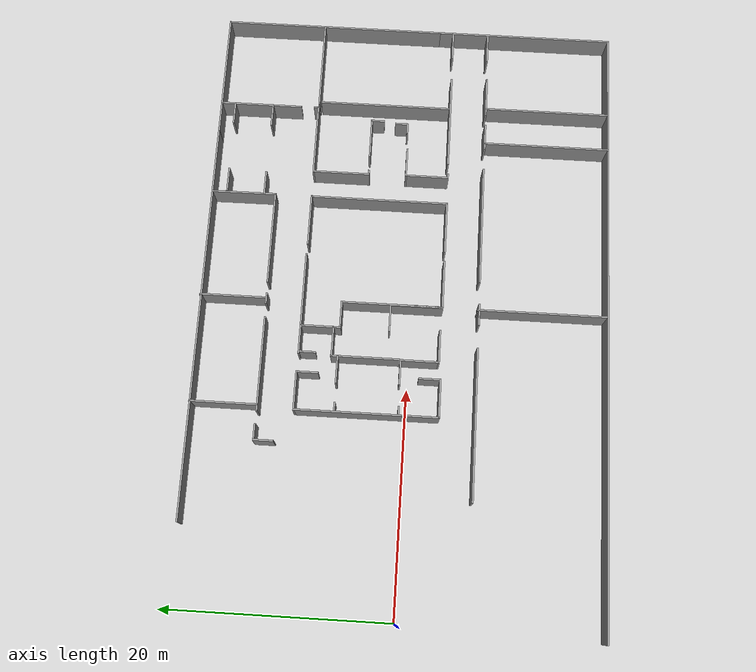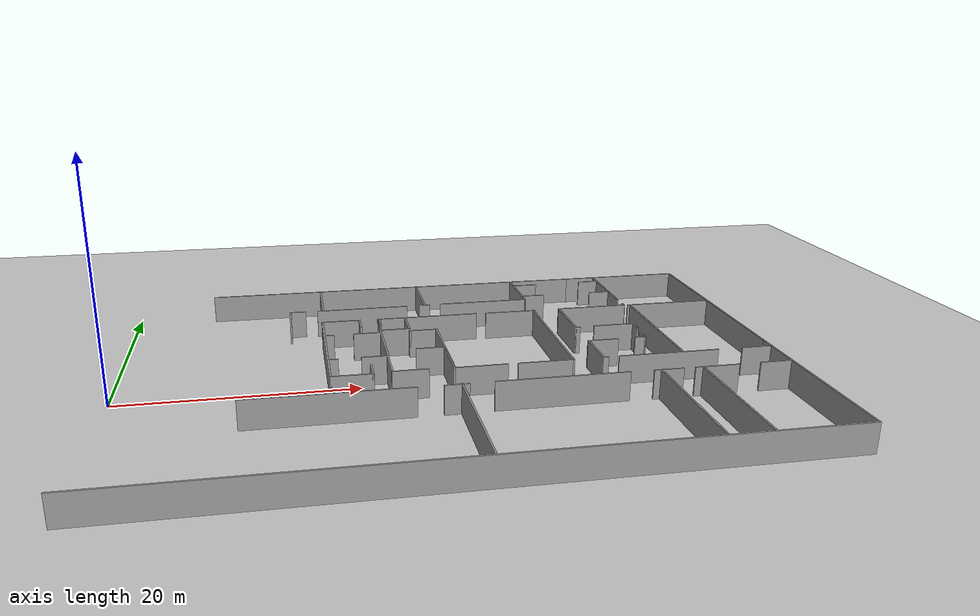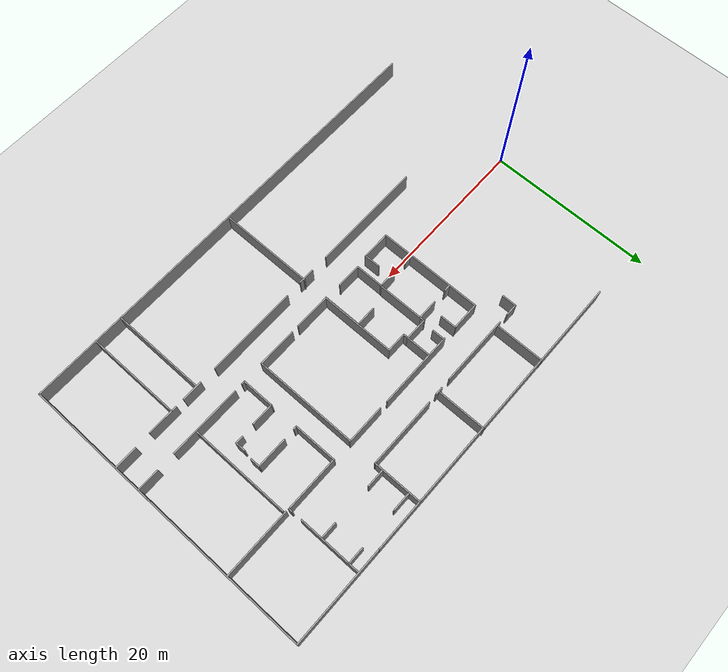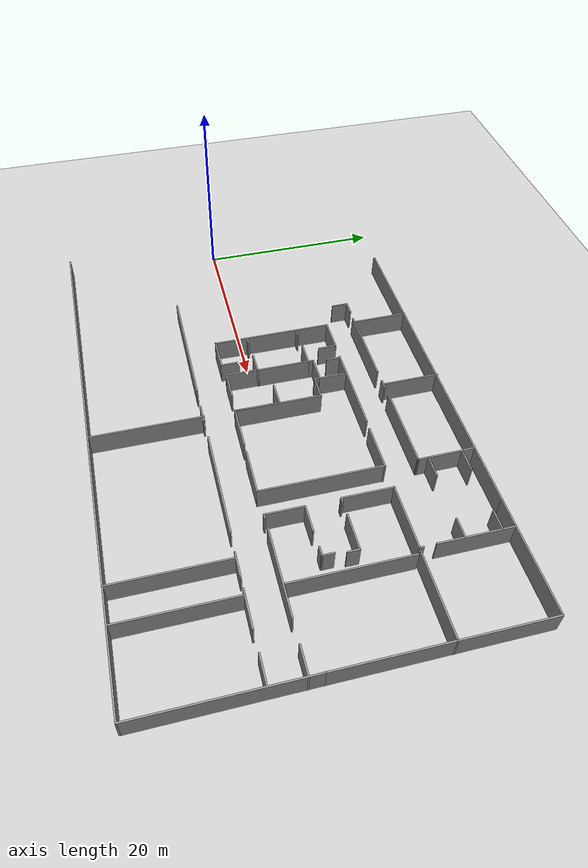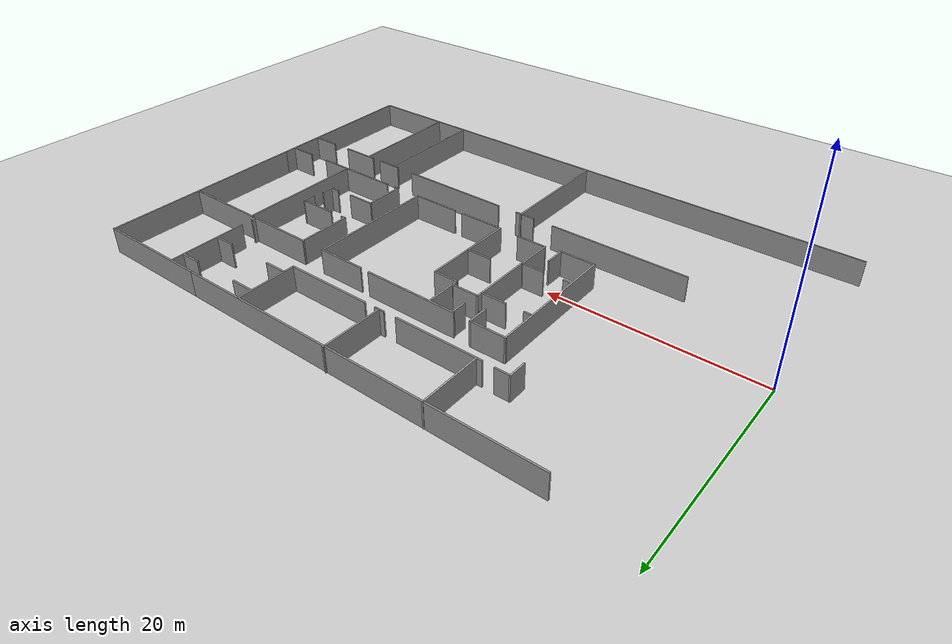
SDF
<sdf version="1.6">
 <world name="default">
  <model name="ground_plane">
   <static>1</static>
   <link name="link">
    <collision name="collision">
     <geometry><plane><normal>0 0 1</normal><size>100 100</size></plane></geometry>
     <surface>
      <contact><collide_bitmask>65535</collide_bitmask></contact>
      <friction><ode><mu>100</mu><mu2>50</mu2></ode></friction>
     </surface>
    </collision>
    <visual name="visual">
     <cast_shadows>0</cast_shadows>
     <geometry><plane><normal>0 0 1</normal><size>100 100</size></plane></geometry>
     <material>
      <script><uri>file://media/materials/scripts/gazebo.material</uri><name>Gazebo/Grey</name></script>
     </material>
    </visual>
   </link>
  </model>
  <model name="L8_1st">
   <pose>-0.728485 -0.360932 0 0 -0 0</pose>
   <link name="Wall_285">
    <collision name="Wall_285_Collision">
     <geometry><box><size>1.81118 0.15 2.5</size></box></geometry>
     <pose>0 0 1.25 0 -0 0</pose>
    </collision>
    <visual name="Wall_285_Visual">
     <pose>0 0 1.25 0 -0 0</pose>
     <geometry><box><size>1.81118 0.15 2.5</size></box></geometry>
     <material>
      <script><uri>file://media/materials/scripts/gazebo.material</uri><name>Gazebo/Grey</name></script>
      <ambient>1 1 1 1</ambient>
     </material>
     <meta><layer>0</layer></meta>
    </visual>
    <pose>15.204 12.4793 0 0 -0 1.5708</pose>
   </link>
   <link name="Wall_286">
    <collision name="Wall_286_Collision">
     <geometry><box><size>1.5 0.15 2.5</size></box></geometry>
     <pose>0 0 1.25 0 -0 0</pose>
    </collision>
    <visual name="Wall_286_Visual">
     <pose>0 0 1.25 0 -0 0</pose>
     <geometry><box><size>1.5 0.15 2.5</size></box></geometry>
     <material>
      <script><uri>file://media/materials/scripts/gazebo.material</uri><name>Gazebo/Grey</name></script>
      <ambient>1 1 1 1</ambient>
     </material>
     <meta><layer>0</layer></meta>
    </visual>
    <pose>15.879 13.2946 0 0 -0 0</pose>
   </link>
   <link name="Wall_288">
    <collision name="Wall_288_Collision">
     <geometry><box><size>8.5 0.15 2.5</size></box></geometry>
     <pose>0 0 1.25 0 -0 0</pose>
    </collision>
    <visual name="Wall_288_Visual">
     <pose>0 0 1.25 0 -0 0</pose>
     <geometry><box><size>8.5 0.15 2.5</size></box></geometry>
     <material>
      <script><uri>file://media/materials/scripts/gazebo.material</uri><name>Gazebo/Grey</name></script>
      <ambient>1 1 1 1</ambient>
     </material>
     <meta><layer>0</layer></meta>
    </visual>
    <pose>21.9638 13.2547 0 0 -0 0</pose>
   </link>
   <link name="Wall_290">
    <collision name="Wall_290_Collision">
     <geometry><box><size>1 0.15 2.5</size></box></geometry>
     <pose>0 0 1.25 0 -0 0</pose>
    </collision>
    <visual name="Wall_290_Visual">
     <pose>0 0 1.25 0 -0 0</pose>
     <geometry><box><size>1 0.15 2.5</size></box></geometry>
     <material>
      <script><uri>file://media/materials/scripts/gazebo.material</uri><name>Gazebo/Grey</name></script>
      <ambient>1 1 1 1</ambient>
     </material>
     <meta><layer>0</layer></meta>
    </visual>
    <pose>27.8956 13.2853 0 0 -0 0</pose>
   </link>
   <link name="Wall_292">
    <collision name="Wall_292_Collision">
     <geometry><box><size>8.5 0.15 2.5</size></box></geometry>
     <pose>0 0 1.25 0 -0 0</pose>
    </collision>
    <visual name="Wall_292_Visual">
     <pose>0 0 1.25 0 -0 0</pose>
     <geometry><box><size>8.5 0.15 2.5</size></box></geometry>
     <material>
      <script><uri>file://media/materials/scripts/gazebo.material</uri><name>Gazebo/Grey</name></script>
      <ambient>1 1 1 1</ambient>
     </material>
     <meta><layer>0</layer></meta>
    </visual>
    <pose>33.6646 13.3159 0 0 -0 0</pose>
   </link>
   <link name="Wall_294">
    <collision name="Wall_294_Collision">
     <geometry><box><size>5.91633 0.15 2.5</size></box></geometry>
     <pose>0 0 1.25 0 -0 0</pose>
    </collision>
    <visual name="Wall_294_Visual">
     <pose>0 0 1.25 0 -0 0</pose>
     <geometry><box><size>5.91633 0.15 2.5</size></box></geometry>
     <material>
      <script><uri>file://media/materials/scripts/gazebo.material</uri><name>Gazebo/Grey</name></script>
      <ambient>1 1 1 1</ambient>
     </material>
     <meta><layer>0</layer></meta>
    </visual>
    <pose>37.8249 16.199 0 0 -0 -1.56569</pose>
   </link>
   <link name="Wall_296">
    <collision name="Wall_296_Collision">
     <geometry><box><size>2.25 0.15 2.5</size></box></geometry>
     <pose>0 0 1.25 0 -0 0</pose>
    </collision>
    <visual name="Wall_296_Visual">
     <pose>0 0 1.25 0 -0 0</pose>
     <geometry><box><size>2.25 0.15 2.5</size></box></geometry>
     <material>
      <script><uri>file://media/materials/scripts/gazebo.material</uri><name>Gazebo/Grey</name></script>
      <ambient>1 1 1 1</ambient>
     </material>
     <meta><layer>0</layer></meta>
    </visual>
    <pose>38.906 14.3406 0 0 -0 0</pose>
   </link>
   <link name="Wall_298">
    <collision name="Wall_298_Collision">
     <geometry><box><size>2.25 0.15 2.5</size></box></geometry>
     <pose>0 0 1.25 0 -0 0</pose>
    </collision>
    <visual name="Wall_298_Visual">
     <pose>0 0 1.25 0 -0 0</pose>
     <geometry><box><size>2.25 0.15 2.5</size></box></geometry>
     <material>
      <script><uri>file://media/materials/scripts/gazebo.material</uri><name>Gazebo/Grey</name></script>
      <ambient>1 1 1 1</ambient>
     </material>
     <meta><layer>0</layer></meta>
    </visual>
    <pose>39.0284 17.7668 0 0 -0 0</pose>
   </link>
   <link name="Wall_300">
    <collision name="Wall_300_Collision">
     <geometry><box><size>2 0.15 2.5</size></box></geometry>
     <pose>0 0 1.25 0 -0 0</pose>
    </collision>
    <visual name="Wall_300_Visual">
     <pose>0 0 1.25 0 -0 0</pose>
     <geometry><box><size>2 0.15 2.5</size></box></geometry>
     <material>
      <script><uri>file://media/materials/scripts/gazebo.material</uri><name>Gazebo/Grey</name></script>
      <ambient>1 1 1 1</ambient>
     </material>
     <meta><layer>0</layer></meta>
    </visual>
    <pose>45.7556 17.8279 0 0 -0 0</pose>
   </link>
   <link name="Wall_302">
    <collision name="Wall_302_Collision">
     <geometry><box><size>2 0.15 2.5</size></box></geometry>
     <pose>0 0 1.25 0 -0 0</pose>
    </collision>
    <visual name="Wall_302_Visual">
     <pose>0 0 1.25 0 -0 0</pose>
     <geometry><box><size>2 0.15 2.5</size></box></geometry>
     <material>
      <script><uri>file://media/materials/scripts/gazebo.material</uri><name>Gazebo/Grey</name></script>
      <ambient>1 1 1 1</ambient>
     </material>
     <meta><layer>0</layer></meta>
    </visual>
    <pose>45.725 14.2795 0 0 -0 0</pose>
   </link>
   <link name="Wall_304">
    <collision name="Wall_304_Collision">
     <geometry><box><size>7.5 0.15 2.5</size></box></geometry>
     <pose>0 0 1.25 0 -0 0</pose>
    </collision>
    <visual name="Wall_304_Visual">
     <pose>0 0 1.25 0 -0 0</pose>
     <geometry><box><size>7.5 0.15 2.5</size></box></geometry>
     <material>
      <script><uri>file://media/materials/scripts/gazebo.material</uri><name>Gazebo/Grey</name></script>
      <ambient>1 1 1 1</ambient>
     </material>
     <meta><layer>0</layer></meta>
    </visual>
    <pose>46.7398 15.3386 0 0 -0 -1.5708</pose>
   </link>
   <link name="Wall_306">
    <collision name="Wall_306_Collision">
     <geometry><box><size>0.5 0.15 2.5</size></box></geometry>
     <pose>0 0 1.25 0 -0 0</pose>
    </collision>
    <visual name="Wall_306_Visual">
     <pose>0 0 1.25 0 -0 0</pose>
     <geometry><box><size>0.5 0.15 2.5</size></box></geometry>
     <material>
      <script><uri>file://media/materials/scripts/gazebo.material</uri><name>Gazebo/Grey</name></script>
      <ambient>1 1 1 1</ambient>
     </material>
     <meta><layer>0</layer></meta>
    </visual>
    <pose>46.775 10.1846 0 0 -0 -1.5708</pose>
   </link>
   <link name="Wall_308">
    <collision name="Wall_308_Collision">
     <geometry><box><size>6.62289 0.15 2.5</size></box></geometry>
     <pose>0 0 1.25 0 -0 0</pose>
    </collision>
    <visual name="Wall_308_Visual">
     <pose>0 0 1.25 0 -0 0</pose>
     <geometry><box><size>6.62289 0.15 2.5</size></box></geometry>
     <material>
      <script><uri>file://media/materials/scripts/gazebo.material</uri><name>Gazebo/Grey</name></script>
      <ambient>1 1 1 1</ambient>
     </material>
     <meta><layer>0</layer></meta>
    </visual>
    <pose>43.5385 10.0087 0 0 -0 0.000276</pose>
   </link>
   <link name="Wall_31">
    <collision name="Wall_31_Collision">
     <geometry><box><size>36 0.15 2.5</size></box></geometry>
     <pose>0 0 1.25 0 -0 0</pose>
    </collision>
    <visual name="Wall_31_Visual">
     <pose>0 0 1.25 0 -0 0</pose>
     <geometry><box><size>36 0.15 2.5</size></box></geometry>
     <material>
      <script><uri>file://media/materials/scripts/gazebo.material</uri><name>Gazebo/Grey</name></script>
      <ambient>1 1 1 1</ambient>
     </material>
     <meta><layer>0</layer></meta>
    </visual>
    <pose>25.9093 19.1026 0 0 -0 0</pose>
   </link>
   <link name="Wall_310">
    <collision name="Wall_310_Collision">
     <geometry><box><size>5.25 0.15 2.5</size></box></geometry>
     <pose>0 0 1.25 0 -0 0</pose>
    </collision>
    <visual name="Wall_310_Visual">
     <pose>0 0 1.25 0 -0 0</pose>
     <geometry><box><size>5.25 0.15 2.5</size></box></geometry>
     <material>
      <script><uri>file://media/materials/scripts/gazebo.material</uri><name>Gazebo/Grey</name></script>
      <ambient>1 1 1 1</ambient>
     </material>
     <meta><layer>0</layer></meta>
    </visual>
    <pose>40.3021 7.4578 0 0 -0 -1.5708</pose>
   </link>
   <link name="Wall_311">
    <collision name="Wall_311_Collision">
     <geometry><box><size>0.5 0.15 2.5</size></box></geometry>
     <pose>0 0 1.25 0 -0 0</pose>
    </collision>
    <visual name="Wall_311_Visual">
     <pose>0 0 1.25 0 -0 0</pose>
     <geometry><box><size>0.5 0.15 2.5</size></box></geometry>
     <material>
      <script><uri>file://media/materials/scripts/gazebo.material</uri><name>Gazebo/Grey</name></script>
      <ambient>1 1 1 1</ambient>
     </material>
     <meta><layer>0</layer></meta>
    </visual>
    <pose>40.4771 4.9078 0 0 -0 0</pose>
   </link>
   <link name="Wall_313">
    <collision name="Wall_313_Collision">
     <geometry><box><size>3.75 0.15 2.5</size></box></geometry>
     <pose>0 0 1.25 0 -0 0</pose>
    </collision>
    <visual name="Wall_313_Visual">
     <pose>0 0 1.25 0 -0 0</pose>
     <geometry><box><size>3.75 0.15 2.5</size></box></geometry>
     <material>
      <script><uri>file://media/materials/scripts/gazebo.material</uri><name>Gazebo/Grey</name></script>
      <ambient>1 1 1 1</ambient>
     </material>
     <meta><layer>0</layer></meta>
    </visual>
    <pose>43.9138 4.92447 0 0 -0 0</pose>
   </link>
   <link name="Wall_314">
    <collision name="Wall_314_Collision">
     <geometry><box><size>1.25 0.15 2.5</size></box></geometry>
     <pose>0 0 1.25 0 -0 0</pose>
    </collision>
    <visual name="Wall_314_Visual">
     <pose>0 0 1.25 0 -0 0</pose>
     <geometry><box><size>1.25 0.15 2.5</size></box></geometry>
     <material>
      <script><uri>file://media/materials/scripts/gazebo.material</uri><name>Gazebo/Grey</name></script>
      <ambient>1 1 1 1</ambient>
     </material>
     <meta><layer>0</layer></meta>
    </visual>
    <pose>45.7138 4.37447 0 0 -0 -1.5708</pose>
   </link>
   <link name="Wall_316">
    <collision name="Wall_316_Collision">
     <geometry><box><size>1 0.15 2.5</size></box></geometry>
     <pose>0 0 1.25 0 -0 0</pose>
    </collision>
    <visual name="Wall_316_Visual">
     <pose>0 0 1.25 0 -0 0</pose>
     <geometry><box><size>1 0.15 2.5</size></box></geometry>
     <material>
      <script><uri>file://media/materials/scripts/gazebo.material</uri><name>Gazebo/Grey</name></script>
      <ambient>1 1 1 1</ambient>
     </material>
     <meta><layer>0</layer></meta>
    </visual>
    <pose>45.1068 1.5649 0 0 -0 0</pose>
   </link>
   <link name="Wall_317">
    <collision name="Wall_317_Collision">
     <geometry><box><size>1.25 0.15 2.5</size></box></geometry>
     <pose>0 0 1.25 0 -0 0</pose>
    </collision>
    <visual name="Wall_317_Visual">
     <pose>0 0 1.25 0 -0 0</pose>
     <geometry><box><size>1.25 0.15 2.5</size></box></geometry>
     <material>
      <script><uri>file://media/materials/scripts/gazebo.material</uri><name>Gazebo/Grey</name></script>
      <ambient>1 1 1 1</ambient>
     </material>
     <meta><layer>0</layer></meta>
    </visual>
    <pose>45.5318 2.1149 0 0 -0 1.5708</pose>
   </link>
   <link name="Wall_319">
    <collision name="Wall_319_Collision">
     <geometry><box><size>2.75 0.15 2.5</size></box></geometry>
     <pose>0 0 1.25 0 -0 0</pose>
    </collision>
    <visual name="Wall_319_Visual">
     <pose>0 0 1.25 0 -0 0</pose>
     <geometry><box><size>2.75 0.15 2.5</size></box></geometry>
     <material>
      <script><uri>file://media/materials/scripts/gazebo.material</uri><name>Gazebo/Grey</name></script>
      <ambient>1 1 1 1</ambient>
     </material>
     <meta><layer>0</layer></meta>
    </visual>
    <pose>41.6757 1.47695 0 0 -0 3.14159</pose>
   </link>
   <link name="Wall_320">
    <collision name="Wall_320_Collision">
     <geometry><box><size>4 0.15 2.5</size></box></geometry>
     <pose>0 0 1.25 0 -0 0</pose>
    </collision>
    <visual name="Wall_320_Visual">
     <pose>0 0 1.25 0 -0 0</pose>
     <geometry><box><size>4 0.15 2.5</size></box></geometry>
     <material>
      <script><uri>file://media/materials/scripts/gazebo.material</uri><name>Gazebo/Grey</name></script>
      <ambient>1 1 1 1</ambient>
     </material>
     <meta><layer>0</layer></meta>
    </visual>
    <pose>40.3757 -0.448048 0 0 -0 -1.5708</pose>
   </link>
   <link name="Wall_321">
    <collision name="Wall_321_Collision">
     <geometry><box><size>0.5 0.15 2.5</size></box></geometry>
     <pose>0 0 1.25 0 -0 0</pose>
    </collision>
    <visual name="Wall_321_Visual">
     <pose>0 0 1.25 0 -0 0</pose>
     <geometry><box><size>0.5 0.15 2.5</size></box></geometry>
     <material>
      <script><uri>file://media/materials/scripts/gazebo.material</uri><name>Gazebo/Grey</name></script>
      <ambient>1 1 1 1</ambient>
     </material>
     <meta><layer>0</layer></meta>
    </visual>
    <pose>40.5507 -2.37305 0 0 -0 0</pose>
   </link>
   <link name="Wall_323">
    <collision name="Wall_323_Collision">
     <geometry><box><size>8.75 0.15 2.5</size></box></geometry>
     <pose>0 0 1.25 0 -0 0</pose>
    </collision>
    <visual name="Wall_323_Visual">
     <pose>0 0 1.25 0 -0 0</pose>
     <geometry><box><size>8.75 0.15 2.5</size></box></geometry>
     <material>
      <script><uri>file://media/materials/scripts/gazebo.material</uri><name>Gazebo/Grey</name></script>
      <ambient>1 1 1 1</ambient>
     </material>
     <meta><layer>0</layer></meta>
    </visual>
    <pose>46.0796 -2.33994 0 0 -0 0</pose>
   </link>
   <link name="Wall_325">
    <collision name="Wall_325_Collision">
     <geometry><box><size>2.75 0.15 2.5</size></box></geometry>
     <pose>0 0 1.25 0 -0 0</pose>
    </collision>
    <visual name="Wall_325_Visual">
     <pose>0 0 1.25 0 -0 0</pose>
     <geometry><box><size>2.75 0.15 2.5</size></box></geometry>
     <material>
      <script><uri>file://media/materials/scripts/gazebo.material</uri><name>Gazebo/Grey</name></script>
      <ambient>1 1 1 1</ambient>
     </material>
     <meta><layer>0</layer></meta>
    </visual>
    <pose>53.985 -2.32235 0 0 -0 0</pose>
   </link>
   <link name="Wall_327">
    <collision name="Wall_327_Collision">
     <geometry><box><size>3.5 0.15 2.5</size></box></geometry>
     <pose>0 0 1.25 0 -0 0</pose>
    </collision>
    <visual name="Wall_327_Visual">
     <pose>0 0 1.25 0 -0 0</pose>
     <geometry><box><size>3.5 0.15 2.5</size></box></geometry>
     <material>
      <script><uri>file://media/materials/scripts/gazebo.material</uri><name>Gazebo/Grey</name></script>
      <ambient>1 1 1 1</ambient>
     </material>
     <meta><layer>0</layer></meta>
    </visual>
    <pose>19.7126 10.0804 0 0 -0 0</pose>
   </link>
   <link name="Wall_328">
    <collision name="Wall_328_Collision">
     <geometry><box><size>2 0.15 2.5</size></box></geometry>
     <pose>0 0 1.25 0 -0 0</pose>
    </collision>
    <visual name="Wall_328_Visual">
     <pose>0 0 1.25 0 -0 0</pose>
     <geometry><box><size>2 0.15 2.5</size></box></geometry>
     <material>
      <script><uri>file://media/materials/scripts/gazebo.material</uri><name>Gazebo/Grey</name></script>
      <ambient>1 1 1 1</ambient>
     </material>
     <meta><layer>0</layer></meta>
    </visual>
    <pose>21.3876 9.15541 0 0 -0 -1.5708</pose>
   </link>
   <link name="Wall_33">
    <collision name="Wall_33_Collision">
     <geometry><box><size>11.5 0.15 2.5</size></box></geometry>
     <pose>0 0 1.25 0 -0 0</pose>
    </collision>
    <visual name="Wall_33_Visual">
     <pose>0 0 1.25 0 -0 0</pose>
     <geometry><box><size>11.5 0.15 2.5</size></box></geometry>
     <material>
      <script><uri>file://media/materials/scripts/gazebo.material</uri><name>Gazebo/Grey</name></script>
      <ambient>1 1 1 1</ambient>
     </material>
     <meta><layer>0</layer></meta>
    </visual>
    <pose>49.5954 19.0975 0 0 -0 0</pose>
   </link>
   <link name="Wall_330">
    <collision name="Wall_330_Collision">
     <geometry><box><size>12.75 0.15 2.5</size></box></geometry>
     <pose>0 0 1.25 0 -0 0</pose>
    </collision>
    <visual name="Wall_330_Visual">
     <pose>0 0 1.25 0 -0 0</pose>
     <geometry><box><size>12.75 0.15 2.5</size></box></geometry>
     <material>
      <script><uri>file://media/materials/scripts/gazebo.material</uri><name>Gazebo/Grey</name></script>
      <ambient>1 1 1 1</ambient>
     </material>
     <meta><layer>0</layer></meta>
    </visual>
    <pose>18.0376 3.78041 0 0 -0 -1.5708</pose>
   </link>
   <link name="Wall_331">
    <collision name="Wall_331_Collision">
     <geometry><box><size>3.5 0.15 2.5</size></box></geometry>
     <pose>0 0 1.25 0 -0 0</pose>
    </collision>
    <visual name="Wall_331_Visual">
     <pose>0 0 1.25 0 -0 0</pose>
     <geometry><box><size>3.5 0.15 2.5</size></box></geometry>
     <material>
      <script><uri>file://media/materials/scripts/gazebo.material</uri><name>Gazebo/Grey</name></script>
      <ambient>1 1 1 1</ambient>
     </material>
     <meta><layer>0</layer></meta>
    </visual>
    <pose>19.7126 -2.51959 0 0 -0 0</pose>
   </link>
   <link name="Wall_332">
    <collision name="Wall_332_Collision">
     <geometry><box><size>2 0.15 2.5</size></box></geometry>
     <pose>0 0 1.25 0 -0 0</pose>
    </collision>
    <visual name="Wall_332_Visual">
     <pose>0 0 1.25 0 -0 0</pose>
     <geometry><box><size>2 0.15 2.5</size></box></geometry>
     <material>
      <script><uri>file://media/materials/scripts/gazebo.material</uri><name>Gazebo/Grey</name></script>
      <ambient>1 1 1 1</ambient>
     </material>
     <meta><layer>0</layer></meta>
    </visual>
    <pose>21.3876 -1.59459 0 0 -0 1.5708</pose>
   </link>
   <link name="Wall_334">
    <collision name="Wall_334_Collision">
     <geometry><box><size>3 0.15 2.5</size></box></geometry>
     <pose>0 0 1.25 0 -0 0</pose>
    </collision>
    <visual name="Wall_334_Visual">
     <pose>0 0 1.25 0 -0 0</pose>
     <geometry><box><size>3 0.15 2.5</size></box></geometry>
     <material>
      <script><uri>file://media/materials/scripts/gazebo.material</uri><name>Gazebo/Grey</name></script>
      <ambient>1 1 1 1</ambient>
     </material>
     <meta><layer>0</layer></meta>
    </visual>
    <pose>24.3605 -2.30208 0 0 -0 3.14159</pose>
   </link>
   <link name="Wall_335">
    <collision name="Wall_335_Collision">
     <geometry><box><size>3.5 0.15 2.5</size></box></geometry>
     <pose>0 0 1.25 0 -0 0</pose>
    </collision>
    <visual name="Wall_335_Visual">
     <pose>0 0 1.25 0 -0 0</pose>
     <geometry><box><size>3.5 0.15 2.5</size></box></geometry>
     <material>
      <script><uri>file://media/materials/scripts/gazebo.material</uri><name>Gazebo/Grey</name></script>
      <ambient>1 1 1 1</ambient>
     </material>
     <meta><layer>0</layer></meta>
    </visual>
    <pose>22.9355 -0.627077 0 0 -0 1.5708</pose>
   </link>
   <link name="Wall_336">
    <collision name="Wall_336_Collision">
     <geometry><box><size>2.25 0.15 2.5</size></box></geometry>
     <pose>0 0 1.25 0 -0 0</pose>
    </collision>
    <visual name="Wall_336_Visual">
     <pose>0 0 1.25 0 -0 0</pose>
     <geometry><box><size>2.25 0.15 2.5</size></box></geometry>
     <material>
      <script><uri>file://media/materials/scripts/gazebo.material</uri><name>Gazebo/Grey</name></script>
      <ambient>1 1 1 1</ambient>
     </material>
     <meta><layer>0</layer></meta>
    </visual>
    <pose>21.8855 1.04792 0 0 -0 3.14159</pose>
   </link>
   <link name="Wall_338">
    <collision name="Wall_338_Collision">
     <geometry><box><size>2.5 0.15 2.5</size></box></geometry>
     <pose>0 0 1.25 0 -0 0</pose>
    </collision>
    <visual name="Wall_338_Visual">
     <pose>0 0 1.25 0 -0 0</pose>
     <geometry><box><size>2.5 0.15 2.5</size></box></geometry>
     <material>
      <script><uri>file://media/materials/scripts/gazebo.material</uri><name>Gazebo/Grey</name></script>
      <ambient>1 1 1 1</ambient>
     </material>
     <meta><layer>0</layer></meta>
    </visual>
    <pose>26.7128 2.191 0 0 -0 0</pose>
   </link>
   <link name="Wall_339">
    <collision name="Wall_339_Collision">
     <geometry><box><size>4.75 0.15 2.5</size></box></geometry>
     <pose>0 0 1.25 0 -0 0</pose>
    </collision>
    <visual name="Wall_339_Visual">
     <pose>0 0 1.25 0 -0 0</pose>
     <geometry><box><size>4.75 0.15 2.5</size></box></geometry>
     <material>
      <script><uri>file://media/materials/scripts/gazebo.material</uri><name>Gazebo/Grey</name></script>
      <ambient>1 1 1 1</ambient>
     </material>
     <meta><layer>0</layer></meta>
    </visual>
    <pose>27.8878 -0.109004 0 0 -0 -1.5708</pose>
   </link>
   <link name="Wall_340">
    <collision name="Wall_340_Collision">
     <geometry><box><size>4.5 0.15 2.5</size></box></geometry>
     <pose>0 0 1.25 0 -0 0</pose>
    </collision>
    <visual name="Wall_340_Visual">
     <pose>0 0 1.25 0 -0 0</pose>
     <geometry><box><size>4.5 0.15 2.5</size></box></geometry>
     <material>
      <script><uri>file://media/materials/scripts/gazebo.material</uri><name>Gazebo/Grey</name></script>
      <ambient>1 1 1 1</ambient>
     </material>
     <meta><layer>0</layer></meta>
    </visual>
    <pose>30.0628 -2.409 0 0 -0 0</pose>
   </link>
   <link name="Wall_342">
    <collision name="Wall_342_Collision">
     <geometry><box><size>4.75 0.15 2.5</size></box></geometry>
     <pose>0 0 1.25 0 -0 0</pose>
    </collision>
    <visual name="Wall_342_Visual">
     <pose>0 0 1.25 0 -0 0</pose>
     <geometry><box><size>4.75 0.15 2.5</size></box></geometry>
     <material>
      <script><uri>file://media/materials/scripts/gazebo.material</uri><name>Gazebo/Grey</name></script>
      <ambient>1 1 1 1</ambient>
     </material>
     <meta><layer>0</layer></meta>
    </visual>
    <pose>35.508 -2.40425 0 0 -0 0</pose>
   </link>
   <link name="Wall_343">
    <collision name="Wall_343_Collision">
     <geometry><box><size>12.5 0.15 2.5</size></box></geometry>
     <pose>0 0 1.25 0 -0 0</pose>
    </collision>
    <visual name="Wall_343_Visual">
     <pose>0 0 1.25 0 -0 0</pose>
     <geometry><box><size>12.5 0.15 2.5</size></box></geometry>
     <material>
      <script><uri>file://media/materials/scripts/gazebo.material</uri><name>Gazebo/Grey</name></script>
      <ambient>1 1 1 1</ambient>
     </material>
     <meta><layer>0</layer></meta>
    </visual>
    <pose>37.808 3.77075 0 0 -0 1.5708</pose>
   </link>
   <link name="Wall_345">
    <collision name="Wall_345_Collision">
     <geometry><box><size>1.5 0.15 2.5</size></box></geometry>
     <pose>0 0 1.25 0 -0 0</pose>
    </collision>
    <visual name="Wall_345_Visual">
     <pose>0 0 1.25 0 -0 0</pose>
     <geometry><box><size>1.5 0.15 2.5</size></box></geometry>
     <material>
      <script><uri>file://media/materials/scripts/gazebo.material</uri><name>Gazebo/Grey</name></script>
      <ambient>1 1 1 1</ambient>
     </material>
     <meta><layer>0</layer></meta>
    </visual>
    <pose>23.208 9.27075 0 0 -0 -1.5708</pose>
   </link>
   <link name="Wall_347">
    <collision name="Wall_347_Collision">
     <geometry><box><size>2.5 0.15 2.5</size></box></geometry>
     <pose>0 0 1.25 0 -0 0</pose>
    </collision>
    <visual name="Wall_347_Visual">
     <pose>0 0 1.25 0 -0 0</pose>
     <geometry><box><size>2.5 0.15 2.5</size></box></geometry>
     <material>
      <script><uri>file://media/materials/scripts/gazebo.material</uri><name>Gazebo/Grey</name></script>
      <ambient>1 1 1 1</ambient>
     </material>
     <meta><layer>0</layer></meta>
    </visual>
    <pose>21.8099 6.58417 0 0 -0 0</pose>
   </link>
   <link name="Wall_348">
    <collision name="Wall_348_Collision">
     <geometry><box><size>0.71401 0.15 2.5</size></box></geometry>
     <pose>0 0 1.25 0 -0 0</pose>
    </collision>
    <visual name="Wall_348_Visual">
     <pose>0 0 1.25 0 -0 0</pose>
     <geometry><box><size>0.71401 0.15 2.5</size></box></geometry>
     <material>
      <script><uri>file://media/materials/scripts/gazebo.material</uri><name>Gazebo/Grey</name></script>
      <ambient>1 1 1 1</ambient>
     </material>
     <meta><layer>0</layer></meta>
    </visual>
    <pose>22.9849 6.86617 0 0 -0 1.5708</pose>
   </link>
   <link name="Wall_349">
    <collision name="Wall_349_Collision">
     <geometry><box><size>2.75 0.15 2.5</size></box></geometry>
     <pose>0 0 1.25 0 -0 0</pose>
    </collision>
    <visual name="Wall_349_Visual">
     <pose>0 0 1.25 0 -0 0</pose>
     <geometry><box><size>2.75 0.15 2.5</size></box></geometry>
     <material>
      <script><uri>file://media/materials/scripts/gazebo.material</uri><name>Gazebo/Grey</name></script>
      <ambient>1 1 1 1</ambient>
     </material>
     <meta><layer>0</layer></meta>
    </visual>
    <pose>24.2849 7.12143 0 0 -0 0</pose>
   </link>
   <link name="Wall_35">
    <collision name="Wall_35_Collision">
     <geometry><box><size>20.25 0.15 2.5</size></box></geometry>
     <pose>0 0 1.25 0 -0 0</pose>
    </collision>
    <visual name="Wall_35_Visual">
     <pose>0 0 1.25 0 -0 0</pose>
     <geometry><box><size>20.25 0.15 2.5</size></box></geometry>
     <material>
      <script><uri>file://media/materials/scripts/gazebo.material</uri><name>Gazebo/Grey</name></script>
      <ambient>1 1 1 1</ambient>
     </material>
     <meta><layer>0</layer></meta>
    </visual>
    <pose>55.2704 9.04747 0 0 -0 -1.5708</pose>
   </link>
   <link name="Wall_350">
    <collision name="Wall_350_Collision">
     <geometry><box><size>3.03599 0.15 2.5</size></box></geometry>
     <pose>0 0 1.25 0 -0 0</pose>
    </collision>
    <visual name="Wall_350_Visual">
     <pose>0 0 1.25 0 -0 0</pose>
     <geometry><box><size>3.03599 0.15 2.5</size></box></geometry>
     <material>
      <script><uri>file://media/materials/scripts/gazebo.material</uri><name>Gazebo/Grey</name></script>
      <ambient>1 1 1 1</ambient>
     </material>
     <meta><layer>0</layer></meta>
    </visual>
    <pose>25.5849 8.59117 0 0 -0 1.5708</pose>
   </link>
   <link name="Wall_352">
    <collision name="Wall_352_Collision">
     <geometry><box><size>0.75 0.15 2.5</size></box></geometry>
     <pose>0 0 1.25 0 -0 0</pose>
    </collision>
    <visual name="Wall_352_Visual">
     <pose>0 0 1.25 0 -0 0</pose>
     <geometry><box><size>0.75 0.15 2.5</size></box></geometry>
     <material>
      <script><uri>file://media/materials/scripts/gazebo.material</uri><name>Gazebo/Grey</name></script>
      <ambient>1 1 1 1</ambient>
     </material>
     <meta><layer>0</layer></meta>
    </visual>
    <pose>25.5849 6.84818 0 0 -0 -1.5708</pose>
   </link>
   <link name="Wall_353">
    <collision name="Wall_353_Collision">
     <geometry><box><size>2.5 0.15 2.5</size></box></geometry>
     <pose>0 0 1.25 0 -0 0</pose>
    </collision>
    <visual name="Wall_353_Visual">
     <pose>0 0 1.25 0 -0 0</pose>
     <geometry><box><size>2.5 0.15 2.5</size></box></geometry>
     <material>
      <script><uri>file://media/materials/scripts/gazebo.material</uri><name>Gazebo/Grey</name></script>
      <ambient>1 1 1 1</ambient>
     </material>
     <meta><layer>0</layer></meta>
    </visual>
    <pose>26.7599 6.54818 0 0 -0 0</pose>
   </link>
   <link name="Wall_354">
    <collision name="Wall_354_Collision">
     <geometry><box><size>9 0.15 2.5</size></box></geometry>
     <pose>0 0 1.25 0 -0 0</pose>
    </collision>
    <visual name="Wall_354_Visual">
     <pose>0 0 1.25 0 -0 0</pose>
     <geometry><box><size>9 0.15 2.5</size></box></geometry>
     <material>
      <script><uri>file://media/materials/scripts/gazebo.material</uri><name>Gazebo/Grey</name></script>
      <ambient>1 1 1 1</ambient>
     </material>
     <meta><layer>0</layer></meta>
    </visual>
    <pose>27.9349 2.12318 0 0 -0 -1.5708</pose>
   </link>
   <link name="Wall_356">
    <collision name="Wall_356_Collision">
     <geometry><box><size>9.25 0.15 2.5</size></box></geometry>
     <pose>0 0 1.25 0 -0 0</pose>
    </collision>
    <visual name="Wall_356_Visual">
     <pose>0 0 1.25 0 -0 0</pose>
     <geometry><box><size>9.25 0.15 2.5</size></box></geometry>
     <material>
      <script><uri>file://media/materials/scripts/gazebo.material</uri><name>Gazebo/Grey</name></script>
      <ambient>1 1 1 1</ambient>
     </material>
     <meta><layer>0</layer></meta>
    </visual>
    <pose>27.6682 10.0351 0 0 -0 3.14159</pose>
   </link>
   <link name="Wall_358">
    <collision name="Wall_358_Collision">
     <geometry><box><size>4.75 0.15 2.5</size></box></geometry>
     <pose>0 0 1.25 0 -0 0</pose>
    </collision>
    <visual name="Wall_358_Visual">
     <pose>0 0 1.25 0 -0 0</pose>
     <geometry><box><size>4.75 0.15 2.5</size></box></geometry>
     <material>
      <script><uri>file://media/materials/scripts/gazebo.material</uri><name>Gazebo/Grey</name></script>
      <ambient>1 1 1 1</ambient>
     </material>
     <meta><layer>0</layer></meta>
    </visual>
    <pose>35.5615 9.98157 0 0 -0 0</pose>
   </link>
   <link name="Wall_360">
    <collision name="Wall_360_Collision">
     <geometry><box><size>5.5 0.15 2.5</size></box></geometry>
     <pose>0 0 1.25 0 -0 0</pose>
    </collision>
    <visual name="Wall_360_Visual">
     <pose>0 0 1.25 0 -0 0</pose>
     <geometry><box><size>5.5 0.15 2.5</size></box></geometry>
     <material>
      <script><uri>file://media/materials/scripts/gazebo.material</uri><name>Gazebo/Grey</name></script>
      <ambient>1 1 1 1</ambient>
     </material>
     <meta><layer>0</layer></meta>
    </visual>
    <pose>22.9849 3.90917 0 0 -0 -1.5708</pose>
   </link>
   <link name="Wall_362">
    <collision name="Wall_362_Collision">
     <geometry><box><size>0.75 0.15 2.5</size></box></geometry>
     <pose>0 0 1.25 0 -0 0</pose>
    </collision>
    <visual name="Wall_362_Visual">
     <pose>0 0 1.25 0 -0 0</pose>
     <geometry><box><size>0.75 0.15 2.5</size></box></geometry>
     <material>
      <script><uri>file://media/materials/scripts/gazebo.material</uri><name>Gazebo/Grey</name></script>
      <ambient>1 1 1 1</ambient>
     </material>
     <meta><layer>0</layer></meta>
    </visual>
    <pose>18.4921 6.55862 0 0 -0 3.14159</pose>
   </link>
   <link name="Wall_364">
    <collision name="Wall_364_Collision">
     <geometry><box><size>0.75 0.15 2.5</size></box></geometry>
     <pose>0 0 1.25 0 -0 0</pose>
    </collision>
    <visual name="Wall_364_Visual">
     <pose>0 0 1.25 0 -0 0</pose>
     <geometry><box><size>0.75 0.15 2.5</size></box></geometry>
     <material>
      <script><uri>file://media/materials/scripts/gazebo.material</uri><name>Gazebo/Grey</name></script>
      <ambient>1 1 1 1</ambient>
     </material>
     <meta><layer>0</layer></meta>
    </visual>
    <pose>18.4921 0.984735 0 0 -0 3.14159</pose>
   </link>
   <link name="Wall_37">
    <collision name="Wall_37_Collision">
     <geometry><box><size>16.25 0.15 2.5</size></box></geometry>
     <pose>0 0 1.25 0 -0 0</pose>
    </collision>
    <visual name="Wall_37_Visual">
     <pose>0 0 1.25 0 -0 0</pose>
     <geometry><box><size>16.25 0.15 2.5</size></box></geometry>
     <material>
      <script><uri>file://media/materials/scripts/gazebo.material</uri><name>Gazebo/Grey</name></script>
      <ambient>1 1 1 1</ambient>
     </material>
     <meta><layer>0</layer></meta>
    </visual>
    <pose>55.2704 -9.05254 0 0 -0 -1.5708</pose>
   </link>
   <link name="Wall_38">
    <collision name="Wall_38_Collision">
     <geometry><box><size>55.25 0.15 2.5</size></box></geometry>
     <pose>0 0 1.25 0 -0 0</pose>
    </collision>
    <visual name="Wall_38_Visual">
     <pose>0 0 1.25 0 -0 0</pose>
     <geometry><box><size>55.25 0.15 2.5</size></box></geometry>
     <material>
      <script><uri>file://media/materials/scripts/gazebo.material</uri><name>Gazebo/Grey</name></script>
      <ambient>1 1 1 1</ambient>
     </material>
     <meta><layer>0</layer></meta>
    </visual>
    <pose>27.7204 -17.1025 0 0 -0 3.14159</pose>
   </link>
   <link name="Wall_384">
    <collision name="Wall_384_Collision">
     <geometry><box><size>12 0.15 2.5</size></box></geometry>
     <pose>0 0 1.25 0 -0 0</pose>
    </collision>
    <visual name="Wall_384_Visual">
     <pose>0 0 1.25 0 -0 0</pose>
     <geometry><box><size>12 0.15 2.5</size></box></geometry>
     <material>
      <script><uri>file://media/materials/scripts/gazebo.material</uri><name>Gazebo/Grey</name></script>
      <ambient>1 1 1 1</ambient>
     </material>
     <meta><layer>0</layer></meta>
    </visual>
    <pose>47.3302 3.76171 0 0 -0 -1.5708</pose>
   </link>
   <link name="Wall_386">
    <collision name="Wall_386_Collision">
     <geometry><box><size>8.25 0.15 2.5</size></box></geometry>
     <pose>0 0 1.25 0 -0 0</pose>
    </collision>
    <visual name="Wall_386_Visual">
     <pose>0 0 1.25 0 -0 0</pose>
     <geometry><box><size>8.25 0.15 2.5</size></box></geometry>
     <material>
      <script><uri>file://media/materials/scripts/gazebo.material</uri><name>Gazebo/Grey</name></script>
      <ambient>1 1 1 1</ambient>
     </material>
     <meta><layer>0</layer></meta>
    </visual>
    <pose>51.237 9.97296 0 0 -0 0</pose>
   </link>
   <link name="Wall_388">
    <collision name="Wall_388_Collision">
     <geometry><box><size>6 0.15 2.5</size></box></geometry>
     <pose>0 0 1.25 0 -0 0</pose>
    </collision>
    <visual name="Wall_388_Visual">
     <pose>0 0 1.25 0 -0 0</pose>
     <geometry><box><size>6 0.15 2.5</size></box></geometry>
     <material>
      <script><uri>file://media/materials/scripts/gazebo.material</uri><name>Gazebo/Grey</name></script>
      <ambient>1 1 1 1</ambient>
     </material>
     <meta><layer>0</layer></meta>
    </visual>
    <pose>27.9366 16.2796 0 0 -0 -1.5708</pose>
   </link>
   <link name="Wall_390">
    <collision name="Wall_390_Collision">
     <geometry><box><size>6 0.15 2.5</size></box></geometry>
     <pose>0 0 1.25 0 -0 0</pose>
    </collision>
    <visual name="Wall_390_Visual">
     <pose>0 0 1.25 0 -0 0</pose>
     <geometry><box><size>6 0.15 2.5</size></box></geometry>
     <material>
      <script><uri>file://media/materials/scripts/gazebo.material</uri><name>Gazebo/Grey</name></script>
      <ambient>1 1 1 1</ambient>
     </material>
     <meta><layer>0</layer></meta>
    </visual>
    <pose>18.2756 16.208 0 0 -0 -1.5708</pose>
   </link>
   <link name="Wall_399">
    <collision name="Wall_399_Collision">
     <geometry><box><size>13.5 0.15 2.5</size></box></geometry>
     <pose>0 0 1.25 0 -0 0</pose>
    </collision>
    <visual name="Wall_399_Visual">
     <pose>0 0 1.25 0 -0 0</pose>
     <geometry><box><size>13.5 0.15 2.5</size></box></geometry>
     <material>
      <script><uri>file://media/materials/scripts/gazebo.material</uri><name>Gazebo/Grey</name></script>
      <ambient>1 1 1 1</ambient>
     </material>
     <meta><layer>0</layer></meta>
    </visual>
    <pose>17.6804 -5.66818 0 0 -0 0</pose>
   </link>
   <link name="Wall_401">
    <collision name="Wall_401_Collision">
     <geometry><box><size>2 0.15 2.5</size></box></geometry>
     <pose>0 0 1.25 0 -0 0</pose>
    </collision>
    <visual name="Wall_401_Visual">
     <pose>0 0 1.25 0 -0 0</pose>
     <geometry><box><size>2 0.15 2.5</size></box></geometry>
     <material>
      <script><uri>file://media/materials/scripts/gazebo.material</uri><name>Gazebo/Grey</name></script>
      <ambient>1 1 1 1</ambient>
     </material>
     <meta><layer>0</layer></meta>
    </visual>
    <pose>27.4804 -5.69508 0 0 -0 0</pose>
   </link>
   <link name="Wall_403">
    <collision name="Wall_403_Collision">
     <geometry><box><size>11 0.15 2.5</size></box></geometry>
     <pose>0 0 1.25 0 -0 0</pose>
    </collision>
    <visual name="Wall_403_Visual">
     <pose>0 0 1.25 0 -0 0</pose>
     <geometry><box><size>11 0.15 2.5</size></box></geometry>
     <material>
      <script><uri>file://media/materials/scripts/gazebo.material</uri><name>Gazebo/Grey</name></script>
      <ambient>1 1 1 1</ambient>
     </material>
     <meta><layer>0</layer></meta>
    </visual>
    <pose>35.9621 -5.64128 0 0 -0 0</pose>
   </link>
   <link name="Wall_405">
    <collision name="Wall_405_Collision">
     <geometry><box><size>2.5 0.15 2.5</size></box></geometry>
     <pose>0 0 1.25 0 -0 0</pose>
    </collision>
    <visual name="Wall_405_Visual">
     <pose>0 0 1.25 0 -0 0</pose>
     <geometry><box><size>2.5 0.15 2.5</size></box></geometry>
     <material>
      <script><uri>file://media/materials/scripts/gazebo.material</uri><name>Gazebo/Grey</name></script>
      <ambient>1 1 1 1</ambient>
     </material>
     <meta><layer>0</layer></meta>
    </visual>
    <pose>44.6525 -5.66818 0 0 -0 0</pose>
   </link>
   <link name="Wall_407">
    <collision name="Wall_407_Collision">
     <geometry><box><size>3.75 0.15 2.5</size></box></geometry>
     <pose>0 0 1.25 0 -0 0</pose>
    </collision>
    <visual name="Wall_407_Visual">
     <pose>0 0 1.25 0 -0 0</pose>
     <geometry><box><size>3.75 0.15 2.5</size></box></geometry>
     <material>
      <script><uri>file://media/materials/scripts/gazebo.material</uri><name>Gazebo/Grey</name></script>
      <ambient>1 1 1 1</ambient>
     </material>
     <meta><layer>0</layer></meta>
    </visual>
    <pose>48.748 -5.66818 0 0 -0 0</pose>
   </link>
   <link name="Wall_409">
    <collision name="Wall_409_Collision">
     <geometry><box><size>2.75 0.15 2.5</size></box></geometry>
     <pose>0 0 1.25 0 -0 0</pose>
    </collision>
    <visual name="Wall_409_Visual">
     <pose>0 0 1.25 0 -0 0</pose>
     <geometry><box><size>2.75 0.15 2.5</size></box></geometry>
     <material>
      <script><uri>file://media/materials/scripts/gazebo.material</uri><name>Gazebo/Grey</name></script>
      <ambient>1 1 1 1</ambient>
     </material>
     <meta><layer>0</layer></meta>
    </visual>
    <pose>53.8977 -5.61437 0 0 -0 0</pose>
   </link>
   <link name="Wall_411">
    <collision name="Wall_411_Collision">
     <geometry><box><size>11.5 0.15 2.5</size></box></geometry>
     <pose>0 0 1.25 0 -0 0</pose>
    </collision>
    <visual name="Wall_411_Visual">
     <pose>0 0 1.25 0 -0 0</pose>
     <geometry><box><size>11.5 0.15 2.5</size></box></geometry>
     <material>
      <script><uri>file://media/materials/scripts/gazebo.material</uri><name>Gazebo/Grey</name></script>
      <ambient>1 1 1 1</ambient>
     </material>
     <meta><layer>0</layer></meta>
    </visual>
    <pose>47.5399 -11.3701 0 0 -0 -1.5708</pose>
   </link>
   <link name="Wall_413">
    <collision name="Wall_413_Collision">
     <geometry><box><size>11.5 0.15 2.5</size></box></geometry>
     <pose>0 0 1.25 0 -0 0</pose>
    </collision>
    <visual name="Wall_413_Visual">
     <pose>0 0 1.25 0 -0 0</pose>
     <geometry><box><size>11.5 0.15 2.5</size></box></geometry>
     <material>
      <script><uri>file://media/materials/scripts/gazebo.material</uri><name>Gazebo/Grey</name></script>
      <ambient>1 1 1 1</ambient>
     </material>
     <meta><layer>0</layer></meta>
    </visual>
    <pose>44.0156 -11.4239 0 0 -0 -1.5708</pose>
   </link>
   <link name="Wall_415">
    <collision name="Wall_415_Collision">
     <geometry><box><size>11.5 0.15 2.5</size></box></geometry>
     <pose>0 0 1.25 0 -0 0</pose>
    </collision>
    <visual name="Wall_415_Visual">
     <pose>0 0 1.25 0 -0 0</pose>
     <geometry><box><size>11.5 0.15 2.5</size></box></geometry>
     <material>
      <script><uri>file://media/materials/scripts/gazebo.material</uri><name>Gazebo/Grey</name></script>
      <ambient>1 1 1 1</ambient>
     </material>
     <meta><layer>0</layer></meta>
    </visual>
    <pose>27.9006 -11.2894 0 0 -0 -1.5708</pose>
   </link>
   <static>1</static>
  </model>
 </world>
</sdf>
